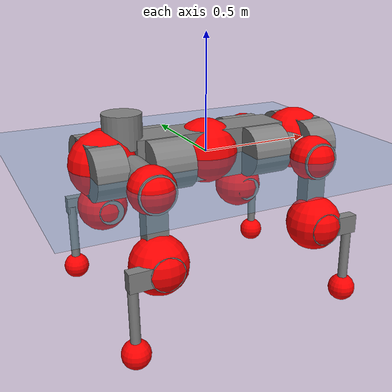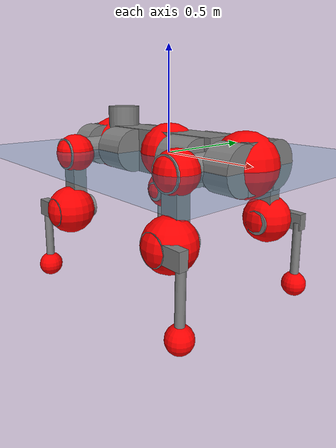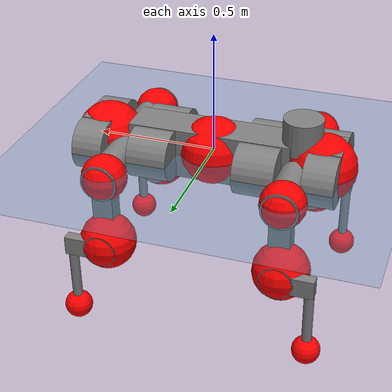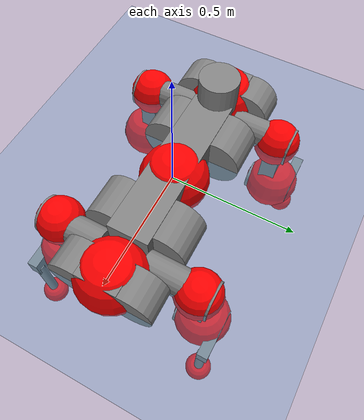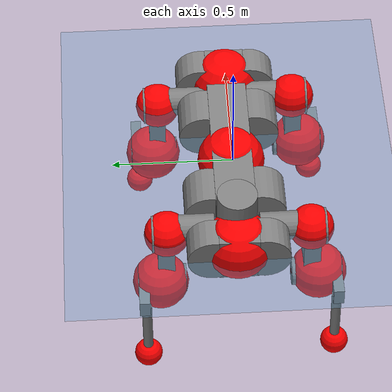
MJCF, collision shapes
<mujoco model="anymal_c">
  <compiler angle="radian" assetdir="assets" balanceinertia="true" inertiafromgeom="false"/>

  <option timestep="0.005" density="1.2" viscosity="2e-05"/>

  <size nkey="1"/>

  <visual>
    <quality shadowsize="8192"/>
    <map shadowclip="0.5"/>
  </visual>

  <default>
    <default class="/">
      <material specular="0" shininess="0.25"/>
      <geom contype="0" conaffinity="0" group="1" solref="-1000 -80"/>
      <site size="0.01 0.005 0.005" group="5"/>
      <general forcelimited="true" forcerange="-80 80" biastype="affine" gainprm="80" biasprm="0 -80 -2"/>
      <default class="anymal_c">
        <joint armature="0.01" damping="0.01" frictionloss="0.1"/>
        <default class="visual">
          <geom type="mesh" group="2"/>
          <default class="visual_zflip"/>
        </default>
        <default class="collision">
          <geom type="cylinder" group="3"/>
          <default class="foot">
            <geom size="0.03 0 0" type="sphere" condim="6" priority="1" friction="0.8 0.02 0.01" solimp="0.015 1 0.03"/>
          </default>
        </default>
      </default>
      <default class="reward_collision_sphere">
        <geom group="5" rgba="1 0 0 1"/>
      </default>
    </default>
  </default>

  <asset>
    <texture type="skybox" colorspace="auto" name="//unnamed_texture_0" builtin="gradient" rgb1="0.95 0.95 0.95" rgb2="0.95 0.95 0.95" width="100" height="600"/>
    <texture type="2d" colorspace="auto" name="texplane" builtin="checker" rgb1="0.345 0.575 0.748" rgb2="0.345 0.575 0.748" markrgb="1 1 1" width="512" height="512"/>
    <texture type="2d" colorspace="linear" name="base" file="base.png"/>
    <texture type="2d" colorspace="linear" name="top_shell" file="top_shell.png"/>
    <texture type="2d" colorspace="linear" name="bottom_shell" file="bottom_shell.png"/>
    <texture type="2d" colorspace="linear" name="remote" file="remote.png"/>
    <texture type="2d" colorspace="linear" name="hatch" file="hatch.png"/>
    <texture type="2d" colorspace="linear" name="handle" file="handle.png"/>
    <texture type="2d" colorspace="linear" name="face" file="face.png"/>
    <texture type="2d" colorspace="linear" name="battery" file="battery.png"/>
    <texture type="2d" colorspace="linear" name="lidar_cage" file="lidar_cage.png"/>
    <texture type="2d" colorspace="linear" name="depth_camera" file="depth_camera.png"/>
    <texture type="2d" colorspace="linear" name="wide_angle_camera" file="wide_angle_camera.png"/>
    <texture type="2d" colorspace="linear" name="lidar" file="lidar.png"/>
    <texture type="2d" colorspace="linear" name="drive" file="drive.png"/>
    <texture type="2d" colorspace="linear" name="hip_l" file="hip_l.png"/>
    <texture type="2d" colorspace="linear" name="shank_l" file="shank_l.png"/>
    <texture type="2d" colorspace="linear" name="foot" file="foot.png"/>
    <texture type="2d" colorspace="linear" name="thigh" file="thigh.png"/>
    <texture type="2d" colorspace="linear" name="shank_r" file="shank_r.png"/>
    <texture type="2d" colorspace="linear" name="hip_r" file="hip_r.png"/>
    <material name="MatPlane" class="/" texture="texplane" texuniform="true" texrepeat="2 2" specular="0.9" shininess="0.5"/>
    <material name="black_plastic" class="/" rgba="0.007 0.007 0.007 1"/>
    <material name="green" class="/" rgba="0.052 0.178 0.033 1"/>
    <material name="red" class="/" rgba="0.178 0.006 0.005 1"/>
    <material name="yellow" class="/" rgba="0.178 0.119 0.006 1"/>
    <material name="lwl" class="/" rgba="0.8 0.8 0.8 1"/>
    <material name="base" class="/" texture="base"/>
    <material name="top_shell" class="/" texture="top_shell"/>
    <material name="bottom_shell" class="/" texture="bottom_shell"/>
    <material name="hip_l" class="/" texture="hip_l"/>
    <material name="thigh" class="/" texture="thigh"/>
    <material name="shank_l" class="/" texture="shank_l"/>
    <material name="foot" class="/" texture="foot"/>
    <material name="hip_r" class="/" texture="hip_r"/>
    <material name="shank" class="/" texture="shank_r"/>
    <material name="hatch" class="/" texture="hatch"/>
    <material name="remote" class="/" texture="remote"/>
    <material name="handle" class="/" texture="handle"/>
    <material name="face" class="/" texture="face"/>
    <material name="depth_camera" class="/" texture="depth_camera"/>
    <material name="wide_angle_camera" class="/" texture="wide_angle_camera"/>
    <material name="battery" class="/" texture="battery"/>
    <material name="lidar_cage" class="/" texture="lidar_cage"/>
    <material name="lidar" class="/" texture="lidar"/>
    <material name="drive" class="/" texture="drive"/>
    <mesh name="base_0" class="/" file="base_0.obj"/>
    <mesh name="base_1" class="/" file="base_1.obj"/>
    <mesh name="base_2" class="/" file="base_2.obj"/>
    <mesh name="base_3" class="/" file="base_3.obj"/>
    <mesh name="base_4" class="/" file="base_4.obj"/>
    <mesh name="base_5" class="/" file="base_5.obj"/>
    <mesh name="top_shell" class="/" file="top_shell.obj"/>
    <mesh name="bottom_shell" class="/" file="bottom_shell.obj"/>
    <mesh name="remote" class="/" file="remote.obj"/>
    <mesh name="handle" class="/" file="handle.obj"/>
    <mesh name="face" class="/" file="face.obj"/>
    <mesh name="wide_angle_camera" class="/" file="wide_angle_camera.obj"/>
    <mesh name="depth_camera" class="/" file="depth_camera.obj"/>
    <mesh name="battery" class="/" file="battery.obj"/>
    <mesh name="lidar_cage" class="/" file="lidar_cage.obj"/>
    <mesh name="lidar" class="/" file="lidar.obj"/>
    <mesh name="drive" class="/" file="drive.obj"/>
    <mesh name="hip_l" class="/" file="hip_l.obj"/>
    <mesh name="thigh" class="/" file="thigh.obj"/>
    <mesh name="shank_l" class="/" file="shank_l.obj"/>
    <mesh name="foot" class="/" file="foot.obj"/>
    <mesh name="hip_r" class="/" file="hip_r.obj"/>
    <mesh name="hatch" class="/" file="hatch.obj"/>
    <mesh name="shank_r" class="/" file="shank_r.obj"/>
  </asset>

  <worldbody>
    <geom name="floor" class="/" size="100 100 0.125" type="plane" group="0" material="MatPlane"/>
    <light name="toplight_shadow" class="/" pos="0 0 5" dir="0.0990148 0.0990148 -0.990148" type="directional" ambient="0.04 0.04 0.04" diffuse="0.55 0.55 0.55" specular="0.12 0.12 0.12"/>
    <light name="toplight_fill" class="/" pos="0 0 5" dir="0.0990148 0.0990148 -0.990148" type="directional" castshadow="false" ambient="0.04 0.04 0.04" diffuse="0.3 0.3 0.3" specular="0.08 0.08 0.08"/>
    <body name="trunk" childclass="anymal_c" pos="-0.000845164 0.00708967 0.00147815" quat="1 2.41268e-05 -4.02689e-05 -2.45611e-05">
      <inertial pos="0.00129454 0.00783053 0.0468865" quat="0.546423 0.477021 0.500333 0.4728" mass="30.7441" diaginertia="0.712948 4.49351 0.212797"/>
      <joint name="//unnamed_joint_0" type="free" armature="0" damping="0" frictionloss="0"/>
      <geom name="//unnamed_geom_1" class="visual" material="green" mesh="base_0"/>
      <geom name="//unnamed_geom_2" class="visual" material="yellow" mesh="base_1"/>
      <geom name="//unnamed_geom_3" class="visual" material="red" mesh="base_2"/>
      <geom name="//unnamed_geom_4" class="visual" material="black_plastic" mesh="base_3"/>
      <geom name="//unnamed_geom_5" class="visual" material="lwl" mesh="base_4"/>
      <geom name="//unnamed_geom_6" class="visual" material="base" mesh="base_5"/>
      <geom name="trunk_1" class="collision" size="0.337035 0.0813534 0.104597" type="box"/>
      <geom name="trunk_2" class="collision" size="0.104597 0.0842589" pos="0.220105 0.103585 0" quat="0.707107 0 0.707107 0"/>
      <geom name="trunk_3" class="collision" size="0.104597 0.0842589" pos="-0.220105 0.103585 0" quat="0.707107 0 0.707107 0"/>
      <geom name="trunk_4" class="collision" size="0.104597 0.0842589" pos="0.220105 -0.103585 0" quat="0.707107 0 0.707107 0"/>
      <geom name="trunk_5" class="collision" size="0.104597 0.0842589" pos="-0.220105 -0.103585 0" quat="0.707107 0 0.707107 0"/>
      <geom name="//unnamed_geom_12" class="visual" material="top_shell" mesh="top_shell"/>
      <geom name="//unnamed_geom_13" class="visual" material="bottom_shell" mesh="bottom_shell"/>
      <geom name="//unnamed_geom_14" class="visual" material="remote" mesh="remote"/>
      <geom name="//unnamed_geom_15" class="visual" material="handle" mesh="handle"/>
      <geom name="//unnamed_geom_16" class="visual" pos="0.419465 0 0" quat="1 0 0 0" material="face" mesh="face"/>
      <geom name="trunk_6" class="collision" size="0.0639205 0.0813534 0.104597" pos="0.475124 0 0" type="box"/>
      <geom name="//unnamed_geom_18" class="collision" size="0.104597 0.0639205" pos="0.475124 0.103585 0" quat="0.707107 0 0.707107 0"/>
      <geom name="//unnamed_geom_19" class="collision" size="0.104597 0.0639205" pos="0.475124 -0.103585 0" quat="0.707107 0 0.707107 0"/>
      <geom name="//unnamed_geom_20" class="visual" pos="0.467179 0 -0.0289181" quat="0.965926 0 0.258819 0" material="depth_camera" mesh="depth_camera"/>
      <geom name="//unnamed_geom_21" class="visual" pos="0.519145 0 0.0148923" material="wide_angle_camera" mesh="wide_angle_camera"/>
      <geom name="//unnamed_geom_22" class="visual_zflip" pos="-0.419465 0 0" quat="0 0 0 1" material="face" mesh="face"/>
      <geom name="trunk_7" class="collision" size="0.0639205 0.0813534 0.104597" pos="-0.475124 0 0" quat="0 0 0 1" type="box"/>
      <geom name="//unnamed_geom_24" class="collision" size="0.104597 0.0639205" pos="-0.475124 -0.103585 0" quat="0 -0.707107 0 0.707107"/>
      <geom name="//unnamed_geom_25" class="collision" size="0.104597 0.0639205" pos="-0.475124 0.103585 0" quat="0 -0.707107 0 0.707107"/>
      <geom name="//unnamed_geom_26" class="visual" pos="-0.467179 0 -0.0289181" quat="0 -0.258819 0 0.965926" material="depth_camera" mesh="depth_camera"/>
      <geom name="//unnamed_geom_27" class="visual_zflip" pos="-0.519145 0 0.0148923" quat="0 0 0 1" material="wide_angle_camera" mesh="wide_angle_camera"/>
      <geom name="//unnamed_geom_28" class="visual" material="battery" mesh="battery"/>
      <geom name="//unnamed_geom_29" class="visual" pos="0 0.119282 0.0290298" quat="0.683013 -0.183013 0.183013 0.683013" material="depth_camera" mesh="depth_camera"/>
      <geom name="//unnamed_geom_30" class="visual" pos="0 -0.119282 0.0290298" quat="0.683013 0.183013 0.183013 -0.683013" material="depth_camera" mesh="depth_camera"/>
      <geom name="//unnamed_geom_31" class="visual" pos="-0.36836 0 0.0731187" quat="1 0 0 0" material="lidar_cage" mesh="lidar_cage"/>
      <geom name="trunk_8" class="collision" size="0.0813534 0.0697315" pos="-0.36836 0 0.132807"/>
      <geom name="//unnamed_geom_33" class="visual" pos="-0.36836 0.000183788 0.141462" quat="0.707107 0 0 -0.707107" material="lidar" mesh="lidar"/>
      <geom name="//unnamed_geom_34" class="visual" pos="0.303492 0.153725 8.36579e-09" quat="0.258819 0.965926 0 0" material="drive" mesh="drive"/>
      <geom name="//unnamed_geom_35" class="visual" pos="0.303492 -0.153725 -8.36579e-09" quat="0.258819 -0.965926 0 0" material="drive" mesh="drive"/>
      <geom name="//unnamed_geom_36" class="visual" pos="-0.303492 0.153725 -8.36579e-09" quat="0 0 0.965926 -0.258819" material="drive" mesh="drive"/>
      <geom name="//unnamed_geom_37" class="visual" pos="-0.303492 -0.153725 8.36579e-09" quat="0 0 -0.965926 -0.258819" material="drive" mesh="drive"/>
      <geom name="//unnamed_geom_38" class="visual" pos="0.11739 0 0.0726213" quat="1 0 0 0" material="hatch" mesh="hatch"/>
      <geom name="//unnamed_geom_39" class="reward_collision_sphere" size="0.139463"/>
      <geom name="//unnamed_geom_40" class="reward_collision_sphere" size="0.139463" pos="0.45539 0 0"/>
      <geom name="//unnamed_geom_41" class="reward_collision_sphere" size="0.139463" pos="-0.45539 0 0"/>
      <site name="imu" pos="0.217985 -0.0098167 0.0814087" size="0.0116219"/>
      <camera name="track" pos="0 -2.95957 0" quat="0.707107 0.707107 0 0" mode="trackcom"/>
      <camera name="ego_camera" pos="0.45539 0 -0.0397925" quat="-0.5 -0.5 0.5 0.5"/>
      <body name="LF_HIP" pos="0.297962 0.142641 -0.0090919" quat="0.260013 0.965599 -0.00271448 -0.00227448">
        <inertial pos="0.0566171 -0.021714 -0.0118585" quat="-0.13008 0.707318 -0.140944 0.680379" mass="4.64243" diaginertia="0.00618201 0.038149 0.00312362"/>
        <joint name="LF_HAA" pos="0 0 0" axis="0.999977 -0.00682086 0.000308857" range="-0.951355 0.409898" armature="0.0109356" damping="0.0424743" frictionloss="0.0831183"/>
        <geom name="//unnamed_geom_42" class="visual" pos="0 0.000492122 -8.08306e-05" quat="0.258819 -0.965926 0 0" material="hip_l" mesh="hip_l"/>
        <geom name="//unnamed_geom_43" class="visual" pos="0.0606175 -0.0794381 -0.0422765" quat="0.183013 -0.683013 0.683013 0.183013" material="drive" mesh="drive"/>
        <geom name="//unnamed_geom_44" class="collision" size="0.0581096 0.0813534" pos="0.0606175 -0.0176979 -0.00686918" quat="-0.353553 -0.612372 0.612372 -0.353553"/>
        <body name="LF_THIGH" pos="0.0616275 -0.118768 -0.0414928" quat="0.184426 -0.681042 0.684798 0.182265">
          <inertial pos="0.0250148 -0.00479371 -0.243687" quat="0.992226 0.028422 -0.063232 0.10335" mass="4.81051" diaginertia="0.0333514 0.215711 0.00422617"/>
          <joint name="LF_HFE" pos="0 0 0" axis="0.999328 -0.0355643 -0.00889953" stiffness="0.0189646" range="-3.20736 2.94623" armature="0.00714611" damping="0.0135709" frictionloss="0.104011"/>
          <geom name="//unnamed_geom_45" class="visual" pos="-0.00930746 -1.46664e-05 0" quat="0.707107 0 0 -0.707107" material="thigh" mesh="thigh"/>
          <geom name="//unnamed_geom_46" class="collision" size="0.0755424 0.0464876" pos="0.0404791 0 0" quat="0.5 0.5 -0.5 -0.5"/>
          <geom name="//unnamed_geom_47" class="collision" size="0.0435822 0.0348657 0.164234" pos="0.0303594 0 -0.140581" quat="0.707107 0 0 -0.707107" type="box"/>
          <geom name="//unnamed_geom_48" class="visual" pos="0.101501 0 -0.283522" quat="1 0 0 0" material="drive" mesh="drive"/>
          <geom name="//unnamed_geom_49" class="collision" size="0.0581096 0.0813534" pos="0.030663 0 -0.283522" quat="0.707107 0 0.707107 0"/>
          <geom name="//unnamed_geom_50" class="reward_collision_sphere" size="0.0929753" pos="0.0252995 0 0"/>
          <body name="LF_SHANK" pos="0.10288 0.00951244 -0.281521" quat="0.999998 -0.00161476 0.00113339 -0.000297441">
            <inertial pos="0.000101307 -0.0909273 -0.0694134" quat="0.993247 -0.113373 0.00172494 -0.0245605" mass="0.921582" diaginertia="0.0118513 0.0579711 0.00124653"/>
            <joint name="LF_KFE" pos="0 0 0" axis="0.999923 -0.0114277 -0.00486638" range="-2.92819 3.16546" armature="0.0145547" damping="0.0159276" frictionloss="0.115784"/>
            <geom name="//unnamed_geom_51" class="visual" pos="-0.00303496 -0.0161826 0" quat="0.707107 0 0 -0.707107" material="shank_l" mesh="shank_l"/>
            <geom name="LF_kfe_act" class="collision" size="0.0697315 0.0232438" pos="0.0202396 0 0" quat="0.5 0.5 -0.5 -0.5"/>
            <geom name="//unnamed_geom_53" class="collision" size="0.0668248 0.039224 0.0220816" pos="0.0202396 -0.085086 0" quat="0.5 0.5 -0.5 -0.5" type="box"/>
            <geom name="//unnamed_geom_54" class="visual" pos="0.0132071 -0.135362 -0.336217" quat="0.382683 0 0 -0.92388" material="foot" mesh="foot"/>
            <geom name="LF_calf" class="collision" size="0.0203383 0.164162" pos="0.0132063 -0.130147 -0.168108" quat="0.707107 0 0 -0.707107"/>
            <geom name="LF_foot" class="foot" size="0.029703" pos="0.0132063 -0.130147 -0.313833" quat="0.707107 0 0 -0.707107"/>
            <geom name="//unnamed_geom_57" class="reward_collision_sphere" size="0.116219" pos="-0.0505989 0 0"/>
            <geom name="//unnamed_geom_58" class="reward_collision_sphere" size="0.0581096" pos="0.0132063 -0.130147 -0.313833"/>
            <site name="LF_foot" class="foot" pos="0.0132063 -0.130147 -0.313833" quat="0.707107 0 0 -0.707107" size="0.0116219"/>
          </body>
        </body>
      </body>
      <body name="RF_HIP" pos="0.306342 -0.150166 0.00264297" quat="0.258651 -0.965971 0.000469089 -0.000229787">
        <inertial pos="0.0594095 0.0225781 -0.00854796" quat="0.132713 0.685146 0.125687 0.705099" mass="4.92646" diaginertia="0.00643533 0.040762 0.00296295"/>
        <joint name="RF_HAA" pos="0 0 0" axis="0.999624 -0.0273762 0.00124111" stiffness="0.00720353" range="-0.504409 0.692636" armature="0.011094" damping="0.00423153" frictionloss="0.105716"/>
        <geom name="//unnamed_geom_59" class="visual" pos="0 -0.000492118 -8.08304e-05" quat="0.258819 0.965926 0 0" material="hip_r" mesh="hip_r"/>
        <geom name="//unnamed_geom_60" class="visual" pos="0.0606175 0.0794381 -0.0422765" quat="0.183013 0.683013 0.683013 -0.183013" material="drive" mesh="drive"/>
        <geom name="//unnamed_geom_61" class="collision" size="0.0581096 0.0813534" pos="0.0606175 0.0176979 -0.00686918" quat="-0.353553 0.612372 0.612372 0.353553"/>
        <body name="RF_THIGH" pos="0.0510936 0.096193 -0.0461074" quat="0.184585 0.683196 0.682517 -0.182599">
          <inertial pos="0.0347766 0.0111756 -0.245932" quat="0.995325 0.00106296 -0.0653775 0.0710769" mass="4.00818" diaginertia="0.0295062 0.190267 0.00377844"/>
          <joint name="RF_HFE" pos="0 0 0" axis="0.999757 0.0147051 -0.0164524" stiffness="0.0109596" range="-2.94244 3.1501" armature="0.01242" damping="0.0051953" frictionloss="0.11784"/>
          <geom name="//unnamed_geom_62" class="visual" pos="-0.00930746 -1.46664e-05 0" quat="0.707107 0 0 -0.707107" material="thigh" mesh="thigh"/>
          <geom name="//unnamed_geom_63" class="collision" size="0.0755424 0.0464876" pos="0.0404791 0 0" quat="0.5 0.5 0.5 0.5"/>
          <geom name="//unnamed_geom_64" class="collision" size="0.0435822 0.0348657 0.164234" pos="0.0303594 0 -0.140581" quat="0.707107 0 0 0.707107" type="box"/>
          <geom name="//unnamed_geom_65" class="visual" pos="0.101501 0 -0.283522" quat="1 0 0 0" material="drive" mesh="drive"/>
          <geom name="//unnamed_geom_66" class="collision" size="0.0581096 0.0813534" pos="0.030663 0 -0.283522" quat="0.707107 0 0.707107 0"/>
          <geom name="//unnamed_geom_67" class="reward_collision_sphere" size="0.0929753" pos="0.0252995 0 0"/>
          <body name="RF_SHANK" pos="0.111482 0.0021702 -0.278529" quat="0.999991 -0.00133398 -0.00395338 0.000557595">
            <inertial pos="0.00343751 0.0911599 -0.0861233" quat="0.99096 0.133857 -0.00351588 0.00829117" mass="0.936629" diaginertia="0.0107135 0.0655377 0.00106645"/>
            <joint name="RF_KFE" pos="0 0 0" axis="0.998521 -0.0538371 -0.00756815" stiffness="0.0124499" range="-3.12094 3.16067" armature="0.006405" damping="0" frictionloss="0.164341"/>
            <geom name="//unnamed_geom_68" class="visual" pos="-0.00303494 0.0161825 0" quat="0.707107 0 0 0.707107" material="shank" mesh="shank_r"/>
            <geom name="RF_kfe_act" class="collision" size="0.0697315 0.0232438" pos="0.0202396 0 0" quat="0.5 0.5 0.5 0.5"/>
            <geom name="//unnamed_geom_70" class="collision" size="0.0668248 0.039224 0.0220816" pos="0.0202396 0.085086 0" quat="0.5 0.5 0.5 0.5" type="box"/>
            <geom name="//unnamed_geom_71" class="visual" pos="0.0132056 0.135362 -0.336217" quat="0.382683 0 0 0.92388" material="foot" mesh="foot"/>
            <geom name="RF_calf" class="collision" size="0.0203383 0.164162" pos="0.0132063 0.130147 -0.168108" quat="0.707107 0 0 0.707107"/>
            <geom name="RF_foot" class="foot" size="0.036502" pos="0.0132063 0.130147 -0.313833" quat="0.707107 0 0 0.707107"/>
            <geom name="//unnamed_geom_74" class="reward_collision_sphere" size="0.116219" pos="-0.0505989 0 0"/>
            <geom name="//unnamed_geom_75" class="reward_collision_sphere" size="0.0581096" pos="0.0132063 0.130147 -0.313833"/>
            <site name="RF_foot" class="foot" pos="0.0132063 0.130147 -0.313833" quat="0.707107 0 0 0.707107" size="0.0116219"/>
          </body>
        </body>
      </body>
      <body name="LH_HIP" pos="-0.301638 0.153431 0.00255973" quat="-0.000172488 0.000341151 0.965743 -0.259499">
        <inertial pos="0.0588031 0.0304126 -0.012426" quat="0.131873 0.67669 0.130082 0.712586" mass="4.16102" diaginertia="0.00603987 0.0336157 0.00305708"/>
        <joint name="LH_HAA" pos="0 0 0" axis="0.999991 0.00364372 0.00215147" stiffness="0.00125887" range="-0.496067 0.772326" armature="0.011308" damping="0.0249421" frictionloss="0.11756"/>
        <geom name="//unnamed_geom_76" class="visual" pos="0 -0.000492118 -8.08304e-05" quat="-0.258819 -0.965926 0 0" material="hip_r" mesh="hip_r"/>
        <geom name="//unnamed_geom_77" class="visual" pos="0.0606175 0.0794381 -0.0422765" quat="0.183013 0.683013 0.683013 -0.183013" material="drive" mesh="drive"/>
        <geom name="//unnamed_geom_78" class="collision" size="0.0581096 0.0813534" pos="0.0606175 0.0176979 -0.00686918" quat="-0.353553 0.612372 0.612372 0.353553"/>
        <body name="LH_THIGH" pos="0.0656519 0.102425 -0.0317762" quat="0.18301 0.683013 0.683013 -0.183013">
          <inertial pos="0.0324278 -0.00150222 -0.234334" quat="0.995082 0.00337397 -0.0690241 0.0709595" mass="4.02163" diaginertia="0.0315335 0.199633 0.00389681"/>
          <joint name="LH_HFE" pos="0 0 0" axis="0.999953 -0.000783156 -0.00962716" range="-2.9994 3.0384" armature="0.0128032" damping="0.0481157" frictionloss="0.107889"/>
          <geom name="//unnamed_geom_79" class="visual" pos="-0.00930746 -1.46664e-05 0" quat="0.707107 0 0 -0.707107" material="thigh" mesh="thigh"/>
          <geom name="//unnamed_geom_80" class="collision" size="0.0755424 0.0464876" pos="0.0404791 0 0" quat="0.5 0.5 -0.5 -0.5"/>
          <geom name="//unnamed_geom_81" class="collision" size="0.0435822 0.0348657 0.164234" pos="0.0303594 0 -0.140581" quat="0.707107 0 0 -0.707107" type="box"/>
          <geom name="//unnamed_geom_82" class="visual" pos="0.101501 0 -0.283522" quat="1 0 0 0" material="drive" mesh="drive"/>
          <geom name="//unnamed_geom_83" class="collision" size="0.0581096 0.0813534" pos="0.030663 0 -0.283522" quat="0.707107 0 0.707107 0"/>
          <geom name="//unnamed_geom_84" class="reward_collision_sphere" size="0.0929753" pos="0.0252995 0 0"/>
          <body name="LH_SHANK" pos="0.106303 0.0113141 -0.282654" quat="1 -0.00014193 8.67067e-05 0.000121735">
            <inertial pos="0.00404526 0.089665 -0.0812593" quat="0.993683 0.109898 0.00434639 0.0222896" mass="0.813608" diaginertia="0.00904851 0.060222 0.00102277"/>
            <joint name="LH_KFE" pos="0 0 0" axis="0.999586 -0.0191871 -0.0214301" stiffness="0.00242688" range="-3.35883 3.27746" armature="0.0126093" damping="0.0254083" frictionloss="0.106941"/>
            <geom name="//unnamed_geom_85" class="visual" pos="-0.00303494 0.0161825 0" quat="-0.707107 0 0 -0.707107" material="shank" mesh="shank_r"/>
            <geom name="LH_kfe_act" class="collision" size="0.0697315 0.0232438" pos="0.0202396 0 0" quat="0.5 0.5 -0.5 -0.5"/>
            <geom name="//unnamed_geom_87" class="collision" size="0.0668248 0.039224 0.0220816" pos="0.0202396 0.085086 0" quat="0.5 0.5 -0.5 -0.5" type="box"/>
            <geom name="//unnamed_geom_88" class="visual" pos="0.0132056 0.135362 -0.336217" quat="-0.382683 0 0 -0.92388" material="foot" mesh="foot"/>
            <geom name="LH_calf" class="collision" size="0.0203383 0.164162" pos="0.0132063 0.130147 -0.168108" quat="0.707107 0 0 -0.707107"/>
            <geom name="LH_foot" class="foot" size="0.0321086" pos="0.0132063 0.130147 -0.313833" quat="0.707107 0 0 -0.707107"/>
            <geom name="//unnamed_geom_91" class="reward_collision_sphere" size="0.116219" pos="-0.0505989 0 0"/>
            <geom name="//unnamed_geom_92" class="reward_collision_sphere" size="0.0581096" pos="0.0132063 0.130147 -0.313833"/>
            <site name="LH_foot" class="foot" pos="0.0132063 0.130147 -0.313833" quat="0.707107 0 0 -0.707107" size="0.0116219"/>
          </body>
        </body>
      </body>
      <body name="RH_HIP" pos="-0.30476 -0.155682 0.000658976" quat="-0.00158557 0.00378164 -0.965726 -0.259531">
        <inertial pos="0.0566004 -0.0308467 -0.0027505" quat="-0.125857 0.710052 -0.134398 0.679649" mass="4.21011" diaginertia="0.00536793 0.0320665 0.00266443"/>
        <joint name="RH_HAA" pos="0 0 0" axis="0.999043 -0.0436044 -0.00329542" range="-0.743196 0.679954" armature="0.0117709" damping="0.016276" frictionloss="0.123809"/>
        <geom name="//unnamed_geom_93" class="visual" pos="0 0.000492122 -8.08306e-05" quat="-0.258819 0.965926 0 0" material="hip_l" mesh="hip_l"/>
        <geom name="//unnamed_geom_94" class="visual" pos="0.0606175 -0.0794381 -0.0422765" quat="-0.183013 0.683013 -0.683013 -0.183013" material="drive" mesh="drive"/>
        <geom name="//unnamed_geom_95" class="collision" size="0.0581096 0.0813534" pos="0.0606175 -0.0176979 -0.00686918" quat="0.353553 0.612372 -0.612372 0.353553"/>
        <body name="RH_THIGH" pos="0.0627898 -0.113859 -0.0442314" quat="-0.187314 0.682505 -0.682075 -0.184049">
          <inertial pos="0.0311246 0.00930191 -0.249165" quat="0.993132 -0.00545444 -0.0809983 0.084252" mass="5.22049" diaginertia="0.0346806 0.229901 0.00433541"/>
          <joint name="RH_HFE" pos="0 0 0" axis="0.998824 0.0412694 0.0254378" stiffness="0.0101253" range="-3.12761 3.05403" armature="0.0106438" damping="0.0127396" frictionloss="0.118639"/>
          <geom name="//unnamed_geom_96" class="visual" pos="-0.00930746 -1.46664e-05 0" quat="0.707107 0 0 -0.707107" material="thigh" mesh="thigh"/>
          <geom name="//unnamed_geom_97" class="collision" size="0.0755424 0.0464876" pos="0.0404791 0 0" quat="0.5 0.5 0.5 0.5"/>
          <geom name="//unnamed_geom_98" class="collision" size="0.0435822 0.0348657 0.164234" pos="0.0303594 0 -0.140581" quat="0.707107 0 0 0.707107" type="box"/>
          <geom name="//unnamed_geom_99" class="visual" pos="0.101501 0 -0.283522" quat="1 0 0 0" material="drive" mesh="drive"/>
          <geom name="//unnamed_geom_100" class="collision" size="0.0581096 0.0813534" pos="0.030663 0 -0.283522" quat="0.707107 0 0.707107 0"/>
          <geom name="//unnamed_geom_101" class="reward_collision_sphere" size="0.0929753" pos="0.0252995 0 0"/>
          <body name="RH_SHANK" pos="0.113716 -0.000268613 -0.28398" quat="0.999999 -0.000345636 0.000916505 -0.00126892">
            <inertial pos="-0.00607631 -0.0903229 -0.0792331" quat="0.992683 -0.119457 0.00501867 -0.0168606" mass="0.920588" diaginertia="0.0096981 0.0676599 0.0011116"/>
            <joint name="RH_KFE" pos="0 0 0" axis="0.998793 0.044328 0.0211636" stiffness="0.01883" range="-2.9768 2.94673" armature="0.0170572" damping="0.00598563" frictionloss="0.124385"/>
            <geom name="//unnamed_geom_102" class="visual" pos="-0.00303496 -0.0161826 0" quat="0.707107 0 0 -0.707107" material="shank_l" mesh="shank_l"/>
            <geom name="RH_kfe_act" class="collision" size="0.0697315 0.0232438" pos="0.0202396 0 0" quat="0.5 0.5 0.5 0.5"/>
            <geom name="//unnamed_geom_104" class="collision" size="0.0668248 0.039224 0.0220816" pos="0.0202396 -0.085086 0" quat="0.5 0.5 0.5 0.5" type="box"/>
            <geom name="//unnamed_geom_105" class="visual" pos="0.0132071 -0.135362 -0.336217" quat="0.382683 0 0 -0.92388" material="foot" mesh="foot"/>
            <geom name="RH_calf" class="collision" size="0.0203383 0.164162" pos="0.0132063 -0.130147 -0.168108" quat="0.707107 0 0 0.707107"/>
            <geom name="RH_foot" class="foot" size="0.0403311" pos="0.0132063 -0.130147 -0.313833" quat="0.707107 0 0 0.707107"/>
            <geom name="//unnamed_geom_108" class="reward_collision_sphere" size="0.116219" pos="-0.0505989 0 0"/>
            <geom name="//unnamed_geom_109" class="reward_collision_sphere" size="0.0581096" pos="0.0132063 -0.130147 -0.313833"/>
            <site name="RH_foot" class="foot" pos="0.0132063 -0.130147 -0.313833" quat="0.707107 0 0 0.707107" size="0.0116219"/>
          </body>
        </body>
      </body>
    </body>
  </worldbody>

  <contact>
    <pair class="/" geom1="floor" geom2="LF_foot" name="//unnamed_contact_0"/>
    <pair class="/" geom1="floor" geom2="RF_foot" name="//unnamed_contact_1"/>
    <pair class="/" geom1="floor" geom2="LH_foot" name="//unnamed_contact_2"/>
    <pair class="/" geom1="floor" geom2="RH_foot" name="//unnamed_contact_3"/>
  </contact>

  <actuator>
    <general name="LF_HAA" class="/" joint="LF_HAA" forcerange="-53.0394 53.0394" gainprm="70.4274" biasprm="0 -70.4274 -2.20762"/>
    <general name="LF_HFE" class="/" joint="LF_HFE" forcerange="-112.893 112.893" gainprm="70.4274" biasprm="0 -70.4274 -2.20762"/>
    <general name="LF_KFE" class="/" joint="LF_KFE" forcerange="-97.0751 97.0751" gainprm="70.4274" biasprm="0 -70.4274 -2.20762"/>
    <general name="RF_HAA" class="/" joint="RF_HAA" forcerange="-58.9152 58.9152" gainprm="70.4274" biasprm="0 -70.4274 -2.20762"/>
    <general name="RF_HFE" class="/" joint="RF_HFE" forcerange="-58.891 58.891" gainprm="70.4274" biasprm="0 -70.4274 -2.20762"/>
    <general name="RF_KFE" class="/" joint="RF_KFE" forcerange="-73.5543 73.5543" gainprm="70.4274" biasprm="0 -70.4274 -2.20762"/>
    <general name="LH_HAA" class="/" joint="LH_HAA" forcerange="-94.3595 94.3595" gainprm="70.4274" biasprm="0 -70.4274 -2.20762"/>
    <general name="LH_HFE" class="/" joint="LH_HFE" forcerange="-97.4774 97.4774" gainprm="70.4274" biasprm="0 -70.4274 -2.20762"/>
    <general name="LH_KFE" class="/" joint="LH_KFE" forcerange="-109.219 109.219" gainprm="70.4274" biasprm="0 -70.4274 -2.20762"/>
    <general name="RH_HAA" class="/" joint="RH_HAA" forcerange="-129.86 129.86" gainprm="70.4274" biasprm="0 -70.4274 -2.20762"/>
    <general name="RH_HFE" class="/" joint="RH_HFE" forcerange="-90.232 90.232" gainprm="70.4274" biasprm="0 -70.4274 -2.20762"/>
    <general name="RH_KFE" class="/" joint="RH_KFE" forcerange="-95.308 95.308" gainprm="70.4274" biasprm="0 -70.4274 -2.20762"/>
  </actuator>

  <sensor>
    <gyro site="imu" name="imu_angular_velocity"/>
    <velocimeter site="imu" name="imu_linear_velocity"/>
    <framelinvel objtype="site" objname="LF_foot" name="LF_foot_global_linear_velocity"/>
    <framelinvel objtype="site" objname="RF_foot" name="RF_foot_global_linear_velocity"/>
    <framelinvel objtype="site" objname="LH_foot" name="LH_foot_global_linear_velocity"/>
    <framelinvel objtype="site" objname="RH_foot" name="RH_foot_global_linear_velocity"/>
  </sensor>

  <keyframe>
    <key name="home" qpos="0 0 0.55 1 0 0 0 0 0.4 -0.8 0 -0.4 0.8 0 -0.4 0.8 0 0.4 -0.8"/>
  </keyframe>
</mujoco>
